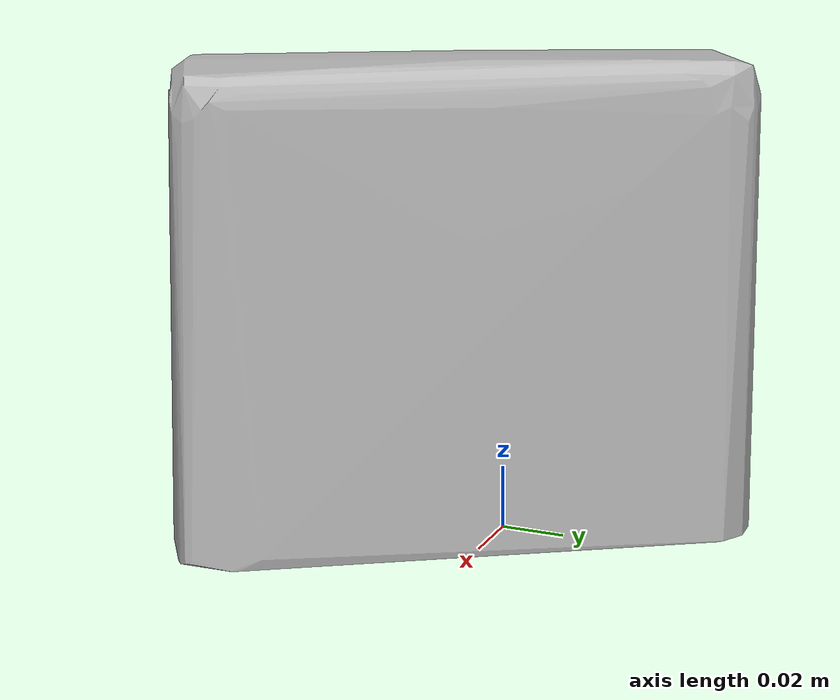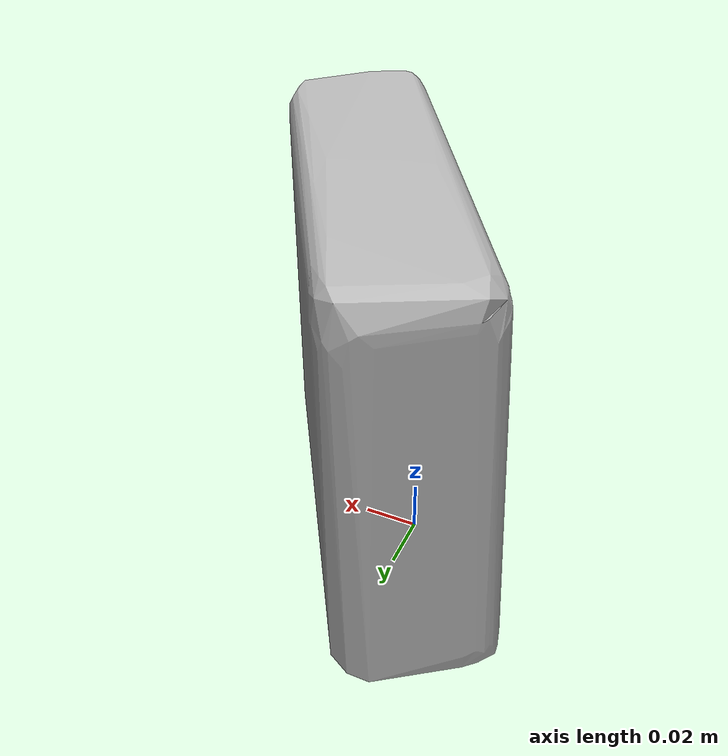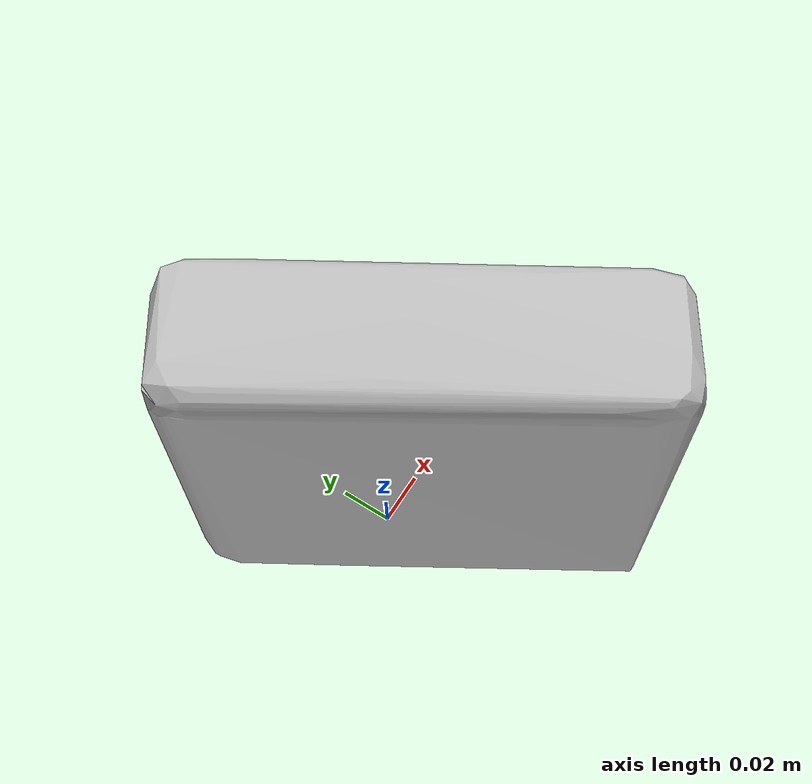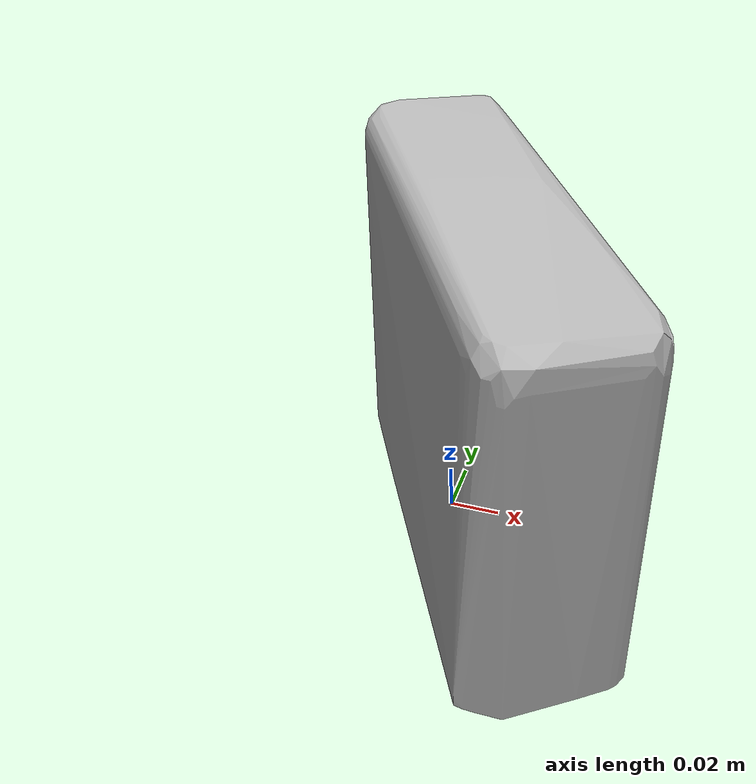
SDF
<?xml version='1.0'?>
<sdf version="1.4">
  <model name="nutrigrain_fruit_crunch_strawberry_parfait">
    <static>false</static>
    <link name="link">
      <inertial>
        <pose>0.016083522034288165 -0.008011783172596532 0.07470617564628866 1.5363012401758795 -0.02907609287167638 -2.597876067056649</pose>
        <mass>0.13210783168287477</mass>
        <inertia>
          <ixx>0.0005237096023292045</ixx>
          <ixy>-6.1244713967283966e-21</ixy>
          <ixz>6.13660551168731e-20</ixz>
          <iyy>0.00033801600389746727</iyy>
          <iyz>8.11825919686233e-21</iyz>
          <izz>0.00025308182625239257</izz>
        </inertia>
      </inertial>
      <collision name="collision">
        <geometry>
          <mesh>
            <!-- Use a downsampled mesh for collisions -->
            <uri>model:///nutrigrain_fruit_crunch_strawberry_parfait/nutrigrain_fruit_crunch_strawberry_parfait_250_collision.obj</uri>
	        </mesh>
        </geometry>
        <surface>
      </surface>
      </collision>
      <visual name="visual">
        <geometry>
          <mesh>
            <uri>model:///nutrigrain_fruit_crunch_strawberry_parfait/optimized_tsdf_texture_mapped_mesh.obj</uri>
	        </mesh>
        </geometry>
        <material>
          <script>
            <uri>model:///nutrigrain_fruit_crunch_strawberry_parfait/nutrigrain_fruit_crunch_strawberry_parfait.material</uri>
            <name>nutrigrain_fruit_crunch_strawberry_parfait</name>
          </script>
        </material>
      </visual>
    </link>
  </model>
</sdf>
